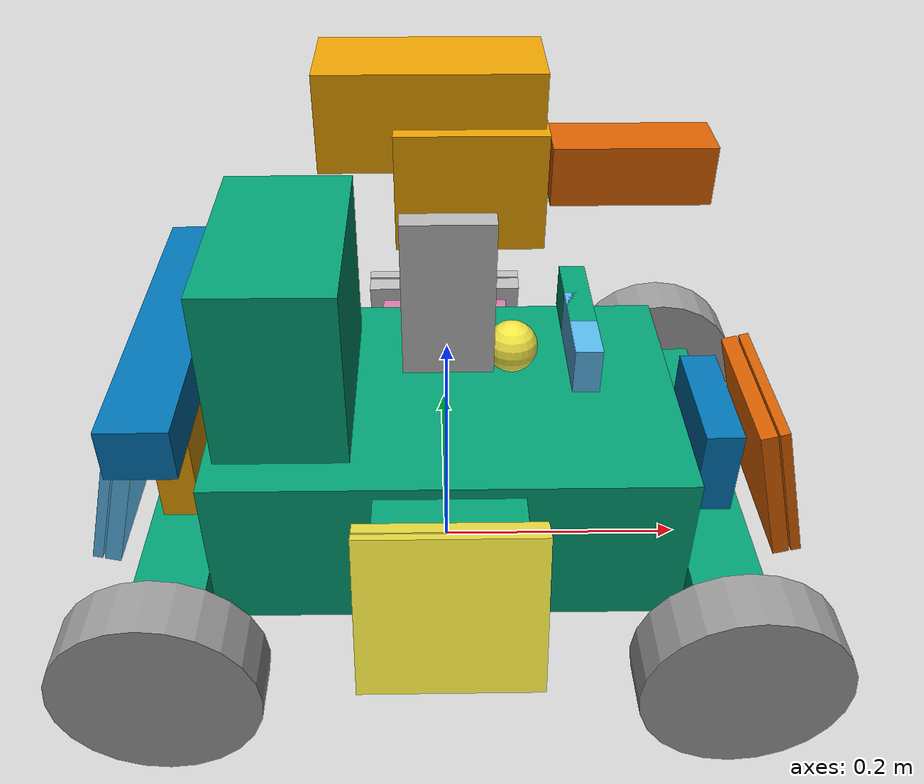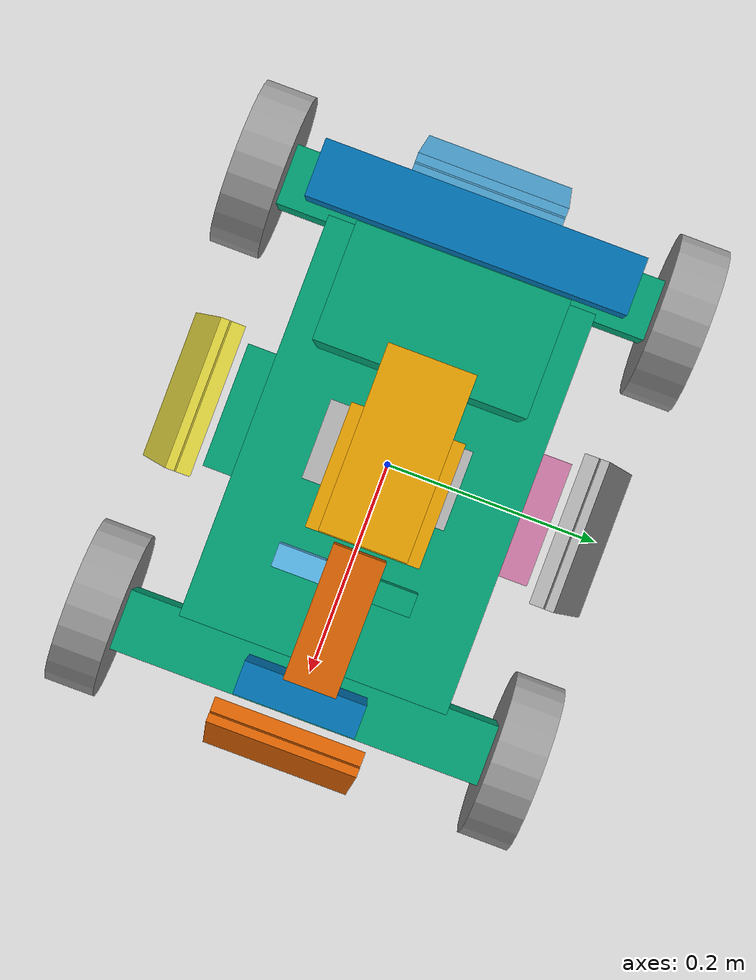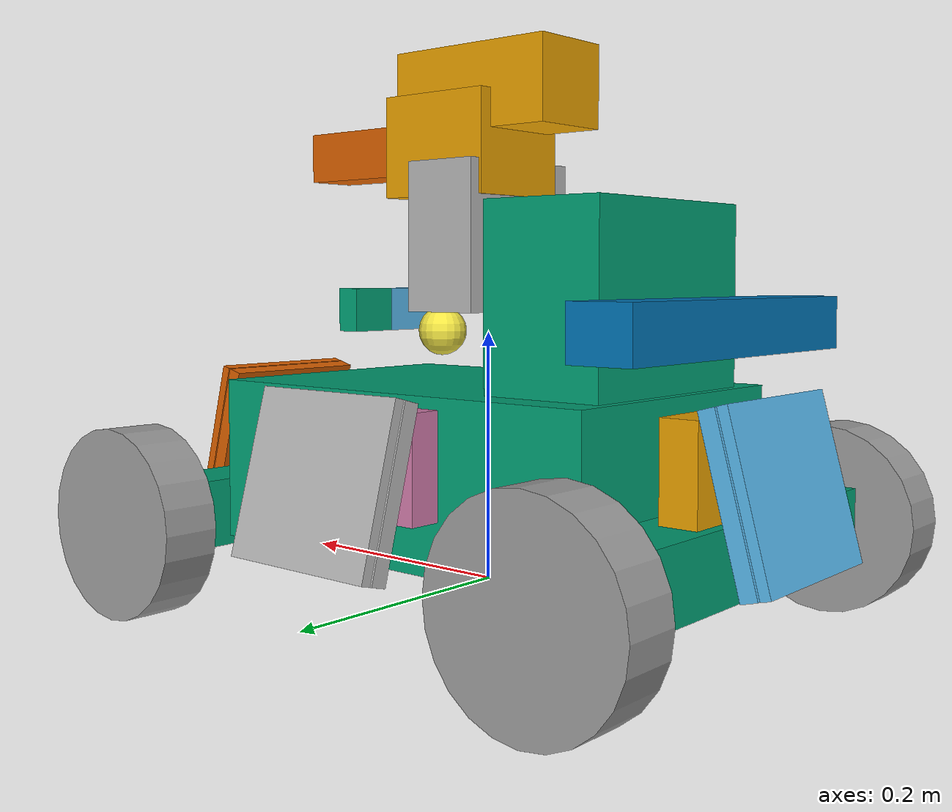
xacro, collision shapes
<?xml version="1.0"?>
<robot name="rmua_robot" xmlns:xacro="http://www.ros.org/wiki/xacro">
  <xacro:property name="PI" value="3.1415926535897931" />
  <xacro:property name="chassis_mass" value="15" />
  <xacro:property name="chassis_inertial_x" value="0.36" />
  <xacro:property name="chassis_inertial_y" value="0.24" />
  <xacro:property name="chassis_inertial_z" value="0.13" />

  <!-- Import all Gazebo-customization elements, including Gazebo colors -->
  <!--xacro:include filename="$(find rmua_bot_description)/urdf/rmua_bot.gazebo" /-->
<gazebo>
  <plugin name="gazebo_ros_control" filename="libgazebo_ros_control.so">
    <robotNamespace>/rmua_robot</robotNamespace>
    <controlPeriod>0.001</controlPeriod>
    <robotSimType>gazebo_ros_control/DefaultRobotHWSim</robotSimType>
    <legacyModeNS>true</legacyModeNS>
  </plugin>
</gazebo>

  <link name="base_footprint"></link>
  <link name="base_link"></link>
  <joint name="base_footprint_joint" type="fixed">
      <origin xyz="0 0 0" rpy="0 0 0" />
      <parent link="base_footprint"/>
      <child link="base_link" />
  </joint>
  <joint name="base_link_joint" type="fixed">
    <origin xyz="0 0 0.05" rpy="0 0 0" />
    <parent link="base_link"/>
    <child link="chassis" />
  </joint>

  <!--chassis-->
  <link name="chassis">
    <visual>
      <origin xyz="0 0 0" rpy="0 0 0" />
      <geometry>
        <mesh filename="package://rmua_bot_description/meshes/chassis_base.dae" />
      </geometry>
    </visual>
    <collision name="chassis_base_collision">
      <origin xyz="0 0 0.045"/>
      <geometry>
        <box size="0.36 0.24 0.13"/>
      </geometry>
    </collision>
    <collision name="chassis_projectile_container_collision">
      <origin xyz="-0.122 0 0.177" rpy="0 0 0"/>
      <geometry>
	<box size="0.1 0.18 0.146"/>
      </geometry>
    </collision>
    <collision name="chassis_fornt_wheel_holder_collision">
      <origin xyz="0.208 0 0" rpy="0 0 0"/>
      <geometry>
        <box size="0.055 0.367 0.055"/>
     </geometry>
    </collision>
    <collision name="chassis_rear_wheel_holder_collision">
      <origin xyz="-0.208 0 0" rpy="0 0 0"/>
      <geometry>
	<box size="0.055 0.367 0.055"/>
      </geometry>
    </collision>
    <inertial>
      <!-- Inertia from CAD model, filled box assumption -->
      <origin xyz="0 0 0.055" rpy="0 0 0"/>
      <mass value="${chassis_mass}"/>
      <inertia
        ixx="${chassis_mass*(chassis_inertial_y*chassis_inertial_y+chassis_inertial_z*chassis_inertial_z)/12}"
        ixy="0"
        ixz="0"
        iyy="${chassis_mass*(chassis_inertial_x*chassis_inertial_x+chassis_inertial_z*chassis_inertial_z)/12}"
        iyz="0"
        izz="${chassis_mass*(chassis_inertial_x*chassis_inertial_x+chassis_inertial_y*chassis_inertial_y)/12}"/>
    </inertial>
  </link>

   <!-- Front Left wheel-->
  <xacro:include filename="$(find rmua_bot_description)/urdf/chassis_wheel_l.xacro" />
  <xacro:chassis_wheel_l prefix="front"
                                  parant="chassis"
                                  xyz="0.207 0.194 0"
                                  rpy="0 0 0"/>

  <!-- Rear Left wheel-->
  <xacro:include filename="$(find rmua_bot_description)/urdf/chassis_wheel_l.xacro" />
  <xacro:chassis_wheel_l prefix="rear"
                                  parant="chassis"
                                  xyz="-0.207 0.194 0"
                                  rpy="0 0 0"/>
   <!-- Front Right wheel-->
  <xacro:include filename="$(find rmua_bot_description)/urdf/chassis_wheel_r.xacro" />
  <xacro:chassis_wheel_r prefix="front"
                                  parant="chassis"
                                  xyz="0.207 -0.194 0"
                                  rpy="0 0 0"/>
   <!-- Rear Right wheel-->
  <xacro:include filename="$(find rmua_bot_description)/urdf/chassis_wheel_r.xacro" />
  <xacro:chassis_wheel_r prefix="rear"
                                  parant="chassis"
                                  xyz="-0.207 -0.194 0"
                                  rpy="0 0 0"/>

  <!--gimbal yaw-->
  <joint name="gimbal_yaw_joint" type="continuous">
    <origin xyz="0 0 0.1376" rpy="0 0 0"/>
    <parent link="chassis"/>
    <child link="gimbal_yaw"/>
    <axis xyz="0 0 1" />
    <limit effort="150" lower="${-PI/2}" upper="${PI/2}" velocity="${2*PI}"/>
  </joint>
  <link name="gimbal_yaw">
    <origin xyz="0 0 0" rpy="0 0 0"/>
    <inertial>
      <origin xyz="0 0 0.06" rpy="0 0 0"/>
      <mass value="1.0"/>
      <inertia
        ixx="0.003033333333333334"
        ixy="0"
        ixz="0"
        iyy="0.003033333333333334"
        iyz="0"
        izz="0.0012500000000000002"/>
    </inertial>
    <visual >
      <geometry>
         <mesh filename="package://rmua_bot_description/meshes/gimbal_yaw.dae" />
      </geometry>
    </visual>
    <collision >
      <origin xyz="0 0 0.0885" rpy="0 0 0"/>
      <geometry>
        <box size="0.065 0.117 0.117"/>
      </geometry>
    </collision>
  </link>
  <!--gimbal pitch-->
  <joint name="gimbal_pitch_joint" type="continuous">
    <origin xyz="0 0.004 0.16" rpy="0 0 0"/>
    <parent link="gimbal_yaw"/>
    <child link="gimbal_pitch"/>
    <axis xyz="0 1 0" />
    <limit effort="150" lower="${-PI/4}" upper="0.5625" velocity="${2*PI}"/>
  </joint>
  <link name="gimbal_pitch">
    <origin xyz="0 0 0" rpy="0 0 0"/>
    <inertial>
      <origin xyz="0.02 0 0" rpy="0 0 0"/>
      <mass value="0.5"/>
      <inertia
        ixx="0.0007541666666666668"
        ixy="0"
        ixz="0"
        iyy="0.0030208333333333337"
        iyz="0"
        izz="0.0029416666666666666"/>
    </inertial>
    <visual >
      <geometry>
         <mesh filename="package://rmua_bot_description/meshes/gimbal_pitch.dae" />
      </geometry>
    </visual>
    <collision name="collision_main">
      <origin xyz="0.015 0 0" rpy="0 0 0"/>
      <geometry>
        <box size="0.1 0.0915 0.08"/>
      </geometry>
    </collision>
    <collision name="collision_box">
      <origin xyz="-0.011 0 0.043" rpy="0 0 0"/>
      <geometry>
        <box size="0.14801 0.07 0.065"/>
      </geometry>
    </collision>
  </link>

  <!-- camera -->
  <xacro:macro name="Box_inertial_matrix" params="m l w h">
    <inertial>
      <mass value="${m}" />
        <inertia ixx="${m*(h*h + l*l)/12}" ixy = "0" ixz = "0"
          iyy="${m*(w*w + l*l)/12}" iyz= "0"
          izz="${m*(w*w + h*h)/12}" />
    </inertial>
  </xacro:macro>

  <xacro:property name="camera_m" value="0.1" />
  <xacro:property name="camera_length" value="0.02" />
  <xacro:property name="camera_width" value="0.08" />
  <xacro:property name="camera_height" value="0.035" />

  <!-- camera1 -->

  <link name="camera1">
    <visual>
      <geometry>
        <box size="${camera_length} ${camera_width} ${camera_height}" />
      </geometry>
      <origin xyz="0.1 -0.02 0.03" rpy="0.0 0.0 0.0" />
    </visual>
    <collision>
      <geometry>
        <box size="${camera_length} ${camera_width} ${camera_height}" />
      </geometry>
      <origin xyz="0.0 0.0 0.0" rpy="0.0 0.0 0.0" />
    </collision>
    <xacro:Box_inertial_matrix m="${camera_m}" l="${camera_length}" w="${camera_width}" h="${camera_height}" />
  </link>

  <joint name="camera1_gimbal_yaw" type="fixed">
    <parent link="gimbal_yaw" />
    <child link="camera1" />
    <origin xyz="0.1 -0.02 0.03" />
  </joint>

  <xacro:include filename="camera1.xacro" />

  <!-- camera2 -->

  <link name="camera2">
    <visual>
      <geometry>
        <box size="${camera_length} ${camera_width} ${camera_height}" />
      </geometry>
      <origin xyz="0.1 0.02 0.03" rpy="0.0 0.0 0.0" />
    </visual>
    <collision>
      <geometry>
        <box size="${camera_length} ${camera_width} ${camera_height}" />
      </geometry>
      <origin xyz="0.0 0.0 0.0" rpy="0.0 0.0 0.0" />
    </collision>
    <xacro:Box_inertial_matrix m="${camera_m}" l="${camera_length}" w="${camera_width}" h="${camera_height}" />
  </link>

  <joint name="camera2_gimbal_yaw" type="fixed">
    <parent link="gimbal_yaw" />
    <child link="camera2" />
    <origin xyz="0.1 0.02 0.03" />
  </joint>

  <xacro:include filename="camera2.xacro" />

  <!-- laser -->
  <xacro:macro name="sphere_inertial_matrix" params="m r">
    <inertial>
      <mass value="${m}" />
      <inertia ixx="${2*m*r*r/5}" ixy="0" ixz="0"
          iyy="${2*m*r*r/5}" iyz="0"
          izz="${2*m*r*r/5}" />
    </inertial>
  </xacro:macro>

  <xacro:property name="laser_m" value="0.01" />
  <xacro:property name="laser_radius" value="0.02" />

  <link name="laser">
    <visual>
      <geometry>
        <sphere radius="${laser_radius}"/>
      </geometry>
      <origin xyz="0.0 0 0.0" rpy="0 0 0" />
    </visual>
    <collision>
      <geometry>
        <sphere radius="${laser_radius}"/>
      </geometry>
      <origin xyz="0 0 0" rpy="0 0 0" />
    </collision>
    <xacro:sphere_inertial_matrix m="${laser_m}" r="${laser_radius}" />
    </link>

    <joint name="laser_chassis" type="fixed">
      <parent link="chassis" />
      <child link="laser" />
      <origin xyz="0.05 0 0.15" />
    </joint>

  <xacro:include filename="laser.xacro" />

  <!--armor modules-->
  <xacro:include filename="$(find models_description)/urdf/rm22_armor_module/armor_module.xacro" />
  <!--front armor module-->
  <xacro:armor_module prefix="front"
                                  parant="chassis"
                                  xyz="0.197 0 0.061"
                                  rpy="0 0 0"
                                  sticker_num="num2_0"/>
  <!--left armor module-->
  <xacro:armor_module prefix="left"
                                  parant="chassis"
                                  xyz="0 0.116 0.061"
                                  rpy="0 0 ${PI/2}"
                                  sticker_num="num2_1"/>
  <!--rear armor module-->
  <xacro:armor_module prefix="rear"
                                  parant="chassis"
                                  xyz="-0.197 0 0.061"
                                  rpy="0 0 ${PI}"
                                  sticker_num="num2_2"/>
  <!--right armor module-->
  <xacro:armor_module prefix="right"
                                  parant="chassis"
                                  xyz="0 -0.116 0.061"
                                  rpy="0 0 ${-PI/2}"
                                  sticker_num="num2_3"/>
 <!--light indicator module-->
<xacro:include filename="$(find models_description)/urdf/rm21_light_indicator_module/light_indicator_module.xacro" />
<xacro:light_indicator_module prefix=""
                                  parant="chassis"
                                  xyz="-0.207 0 0.1"
                                  rpy="0 0 0" />

 <!--speed monitor module-->
<xacro:include filename="$(find models_description)/urdf/rm22_speed_monitor_module/speed_monitor_module_17mm.xacro" />
<xacro:speed_monitor_module_17mm suffix=""
                                  parant="gimbal_pitch"
                                  xyz="0.07 0 0"
                                  rpy="0 0 0" />

<!--transmission -->
<transmission name="tran1">
    <type>transmission_interface/SimpleTransmission</type>
    <joint name="gimbal_yaw_joint">
      <hardwareInterface>hardware_interface/EffortJointInterface</hardwareInterface>
    </joint>
    <actuator name="motor_yaw">
      <hardwareInterface>EffortJointInterface</hardwareInterface>
      <mechanicalReduction>1</mechanicalReduction>
    </actuator>
</transmission>

<transmission name="tran2">
    <type>transmission_interface/SimpleTransmission</type>
    <joint name="gimbal_pitch_joint">
      <hardwareInterface>hardware_interface/EffortJointInterface</hardwareInterface>
    </joint>
    <actuator name="motor_pitch">
      <hardwareInterface>EffortJointInterface</hardwareInterface>
      <mechanicalReduction>1</mechanicalReduction>
    </actuator>
</transmission>

<!-- Include controller plugin for Gazebo -->
  <xacro:include filename="$(find rmua_bot_description)/urdf/nexus_4wd_mecanum.gazebo" />

</robot>

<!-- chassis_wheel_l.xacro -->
<robot xmlns:xacro="http://www.ros.org/wiki/xacro" name="chassis_wheel_l">
  <xacro:macro name="chassis_wheel_l" params="prefix parant xyz rpy">
    <!--xacro:property name="gripper_side" value="${side[0]}" scope="local"/-->
    <xacro:property name="pi" value="3.1415926535897931" />
    <!-- Base of end effector -->
    <joint name="${prefix}_wheel_l_joint" type="continuous">
      <origin xyz="${xyz}" rpy="${rpy}" />
      <parent link="${parant}"/>
      <child link="${prefix}_wheel_l" />
      <axis xyz="0 1 0"/>
    </joint>
    <link name="${prefix}_wheel_l">
      <visual>
        <origin rpy="0 0 0" xyz="0 0 0"/>
        <geometry>
          <mesh filename="package://rmua_bot_description/meshes/wheel_left.dae"/>
        </geometry>
      </visual>
      <collision>
        <origin rpy="${-pi/2} 0 0" xyz="0.0 0.0 0"/>
        <geometry>
          <cylinder length="0.0452" radius="0.0758"/>
        </geometry>
      </collision>
      <inertial>
        <origin rpy="${-pi/2} 0 0" xyz="0.0 0.0 0.0"/>
        <mass value="0.4"/>
        <inertia ixx="0.0006426653333333334" ixy="0" ixz="0" iyy="0.0006426653333333334" iyz="0" izz="0.0011491280000000001"/>
      </inertial>
    </link>
  </xacro:macro>
</robot>

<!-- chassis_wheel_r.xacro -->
<robot xmlns:xacro="http://www.ros.org/wiki/xacro" name="chassis_wheel_r">
  <xacro:macro name="chassis_wheel_r" params="prefix parant xyz rpy">
    <!--xacro:property name="gripper_side" value="${side[0]}" scope="local"/-->
    <xacro:property name="pi" value="3.1415926535897931" />
    <!-- Base of end effector -->
    <joint name="${prefix}_wheel_r_joint" type="continuous">
      <origin xyz="${xyz}" rpy="${rpy}" />
      <parent link="${parant}"/>
      <child link="${prefix}_wheel_r" />
      <axis xyz="0 1 0"/>
    </joint>
    <link name="${prefix}_wheel_r">
      <visual>
        <origin rpy="0 0 0" xyz="0 0 0"/>
        <geometry>
          <mesh filename="package://rmua_bot_description/meshes/wheel_right.dae"/>
        </geometry>
      </visual>
      <collision>
        <origin rpy="${pi/2} 0 0" xyz="0.0 0.0 0"/>
        <geometry>
          <cylinder length="0.0452" radius="0.0758"/>
        </geometry>
      </collision>
      <inertial>
        <origin rpy="${pi/2} 0 0" xyz="0.0 0.0 0.0"/>
        <mass value="0.4"/>
        <inertia ixx="0.0006426653333333334" ixy="0" ixz="0" iyy="0.0006426653333333334" iyz="0" izz="0.0011491280000000001"/>
      </inertial>
    </link>
  </xacro:macro>
</robot>

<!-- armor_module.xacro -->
<robot xmlns:xacro="http://www.ros.org/wiki/xacro" name="armor_module">
  <xacro:macro name="armor_module" params="prefix parant xyz rpy sticker_num">
    <!--xacro:property name="gripper_side" value="${side[0]}" scope="local"/-->
    <xacro:property name="pi" value="3.1415926535897931" />
     <xacro:include filename="$(find models_description)/urdf/rm22_armor_module/armor_support.xacro" />
     <xacro:armor_support prefix="${prefix}"
                                  parant="${parant}"
                                  xyz="${xyz}"
                                  rpy="${rpy}"/>
     <xacro:include filename="$(find models_description)/urdf/rm22_armor_module/small_armor.xacro" />
     <xacro:small_armor prefix="${prefix}"
                                  parant="${prefix}_armor_support"
                                  xyz="0.075 0 -0.071"
                                  rpy="0 -0.262 0"
                                  sticker_num="${sticker_num}"
                                  />
  </xacro:macro>
</robot>

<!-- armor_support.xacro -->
<robot xmlns:xacro="http://www.ros.org/wiki/xacro" name="armor_support">
  <xacro:macro name="armor_support" params="prefix parant xyz rpy">
    <!--xacro:property name="gripper_side" value="${side[0]}" scope="local"/-->
    <xacro:property name="pi" value="3.1415926535897931" />
    <!-- Base of end effector -->
    <joint name="${prefix}_armor_support_joint" type="fixed">
      <origin xyz="${xyz}" rpy="${rpy}" />
      <parent link="${parant}"/>
      <child link="${prefix}_armor_support" />
    </joint>
    <link name="${prefix}_armor_support">
      <visual>
        <origin rpy="0 0 0" xyz="0 0 0"/>
        <geometry>
          <mesh filename="package://models_description/meshes/rm22_armor_module/armor_support_frame.stl"/>
        </geometry>

      </visual>
      <collision>
        <origin rpy="0 0 0" xyz="0.015 0.0 0"/>
        <geometry>
          <box size="0.03 0.11 0.08"/>
        </geometry>
      </collision>
      <inertial>
        <origin rpy="0 0 0" xyz="0.035 0.0 0.0"/>
        <mass value="0.1"/>
        <inertia ixx="0.00023080833333333334" ixy="0" ixz="0" iyy="0.00017014166666666668" iyz="0" izz="0.00014468333333333334"/>
      </inertial>
    </link>
  </xacro:macro>
</robot>

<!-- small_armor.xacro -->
<robot xmlns:xacro="http://www.ros.org/wiki/xacro" name="small_armor">

  <xacro:macro name="small_armor" params="prefix parant xyz rpy sticker_num">
    <xacro:property name="pi" value="3.1415926535897931" />
    <joint name="${prefix}_small_armor_joint" type="fixed">
      <origin xyz="${xyz}" rpy="${rpy}" />
      <parent link="${parant}"/>
      <child link="${prefix}_small_armor" />
    </joint>
    <link name="${prefix}_small_armor">
      <visual >
        <origin rpy="0 0 0" xyz="0 0 0"/>
        <geometry>
          <mesh filename="package://models_description/meshes/rm22_armor_module/small_armor.dae"/>
        </geometry>
      </visual>
      <visual >
        <origin rpy="0 0 0" xyz="0 0 0"/>
        <geometry>
          <mesh filename="package://models_description/meshes/rm22_armor_module/small_armor_target.dae"/>
        </geometry>
      </visual>
      <visual >
        <origin rpy="${pi/2} 0 ${pi/2}" xyz="0.014 0 0.0625"/>
        <geometry>
          <mesh filename="package://models_description/meshes/rm22_armor_module/sticker_${sticker_num}.dae"/>
        </geometry>
      </visual>
      <visual name="light_bar_visual">
        <!--origin rpy="${pi/2} 0 ${pi/2}" xyz="0.014 0 0.0625"/-->
        <geometry>
          <mesh filename="package://models_description/meshes/rm22_armor_module/small_armor_light_bar.dae"/>
        </geometry>

      </visual>
      <collision name="collision">
        <origin rpy="0 0 0" xyz="0 0 0.0625"/>
        <geometry>
          <box size="0.013 0.135 0.125"/>
        </geometry>
      </collision>
       <collision name="target_collision">
        <origin rpy="0 0 0" xyz="0.012 0 0.0625"/>
        <geometry>
          <box size="0.008 0.135 0.125"/>
        </geometry>
      </collision>
      <inertial>
        <origin rpy="0 0 0" xyz="0.0 0.0 0.0625"/>
        <mass value="0.1"/>
        <inertia ixx="0.0003065083333333333" ixy="0" ixz="0" iyy="0.0001421774166666667" iyz="0" izz="0.0001670190833333333"/>
      </inertial>
    </link>
  </xacro:macro>
</robot>

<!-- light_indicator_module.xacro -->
<robot xmlns:xacro="http://www.ros.org/wiki/xacro" name="light_indicator_module">
  <xacro:macro name="light_indicator_module" params="prefix parant xyz rpy">
    <joint name="${prefix}_light_indicator_joint" type="fixed">
      <origin xyz="${xyz}" rpy="${rpy}" />
      <parent link="${parant}"/>
      <child link="${prefix}_light_indicator" />
    </joint>
    <link name="${prefix}_light_indicator">
      <visual >
        <origin rpy="0 0 0" xyz="0 0 0"/>
        <geometry>
          <mesh filename="package://models_description/meshes/rm21_light_indicator_module/light_indicator_holder.dae"/>
        </geometry>
      </visual>
      <visual >
        <origin rpy="0 0 0" xyz="0 0 0"/>
        <geometry>
          <mesh filename="package://models_description/meshes/rm21_light_indicator_module/light_indicator_bar.dae"/>
        </geometry>
      </visual>
      <collision name="collision">
        <origin rpy="0 0 0" xyz="0 0 0.06"/>
        <geometry>
          <box size="0.05 0.28 0.04"/>
        </geometry>
      </collision>
      <inertial>
        <origin rpy="0 0 0" xyz="0.0 0.0 0.04"/>
        <mass value="0.1"/>
        <inertia ixx="0.0006666666666666669" ixy="0" ixz="0" iyy="0.00003416666666666667" iyz="0" izz="0.0006741666666666668"/>
      </inertial>
    </link>
  </xacro:macro>
</robot>

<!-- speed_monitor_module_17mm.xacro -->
<robot xmlns:xacro="http://www.ros.org/wiki/xacro" name="speed_monitor_module_17mm">
  <xacro:macro name="speed_monitor_module_17mm" params="suffix parant xyz rpy">
    <joint name="speed_monitor_joint_${suffix}" type="fixed">
      <origin xyz="${xyz}" rpy="${rpy}" />
      <parent link="${parant}"/>
      <child link="speed_monitor_${suffix}" />
    </joint>
    <link name="speed_monitor_${suffix}">
      <visual >
        <origin rpy="0 0 0" xyz="0 0 0"/>
        <geometry>
          <mesh filename="package://models_description/meshes/rm22_speed_monitor_module/speed_monitor_17mm.dae"/>
        </geometry>
      </visual>
      <visual >
        <origin rpy="0 0 0" xyz="0 0 0"/>
        <geometry>
          <mesh filename="package://models_description/meshes/rm22_speed_monitor_module/speed_monitor_17mm_light_bar.dae"/>
        </geometry>
      </visual>
      <collision name="collision">
        <origin rpy="0 0 0" xyz="0.055 0 0"/>
        <geometry>
          <box size="0.11 0.043 0.041"/>
        </geometry>
      </collision>
      <inertial>
        <origin rpy="0 0 0" xyz="0.055 0.0 0.0"/>
        <mass value="0.1"/>
        <inertia ixx="0.00002941666666666667" ixy="0" ixz="0" iyy="0.00011484166666666668" iyz="0" izz="0.00011624166666666668"/>
      </inertial>
    </link>
  </xacro:macro>
</robot>
